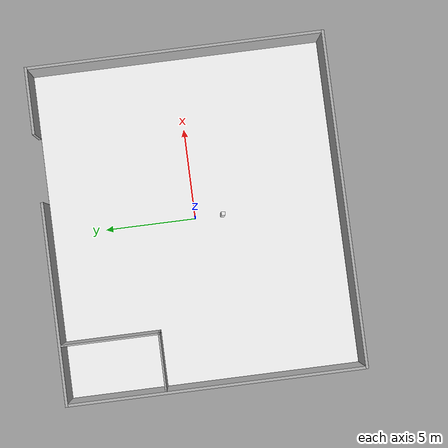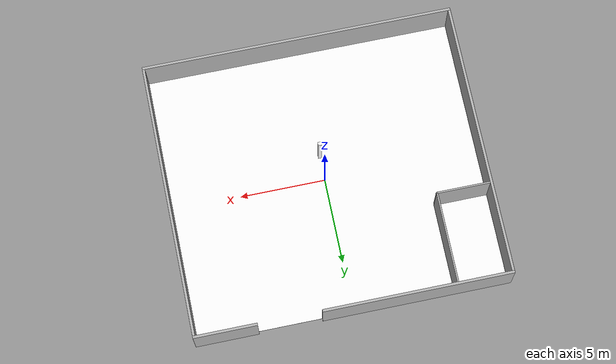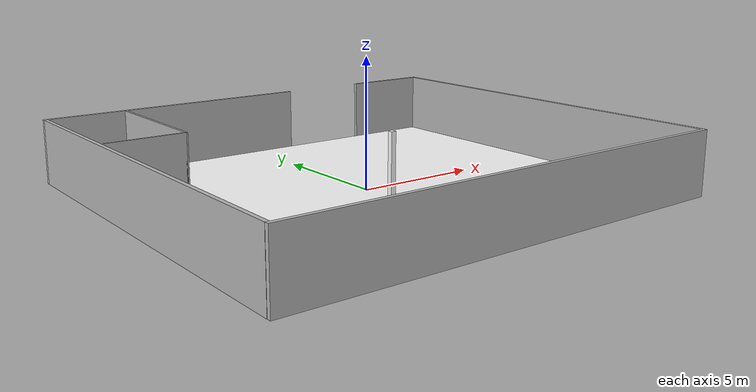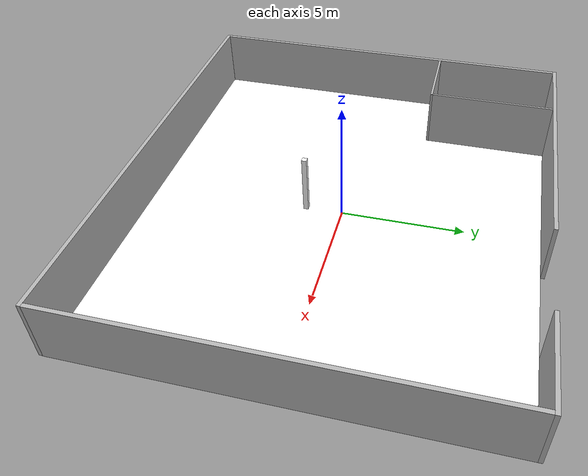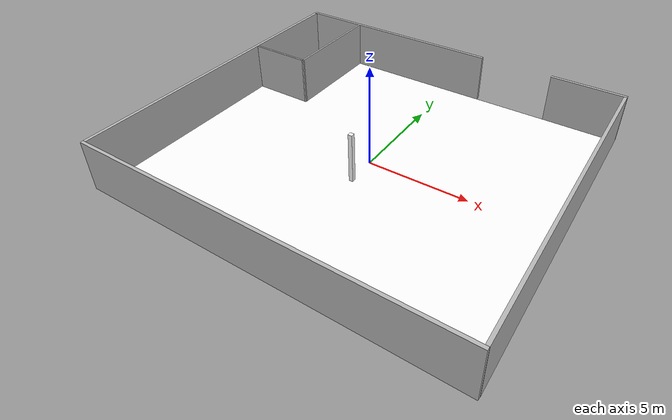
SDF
<?xml version="1.0"?>
<sdf version="1.6">
<model name='highbay_building'>
  <static>true</static>
  <pose frame=''>0 0 0 0 -0 0</pose>

    <link name='Wall_1'>
      <collision name='Wall_1_Collision'>
        <geometry>
          <box>
            <size>3.6576 .15239 2.5</size>
          </box>
        </geometry>
        <pose frame=''>0 0 1.25 0 -0 0</pose>
      </collision>
      <visual name='Wall_1_Visual'>
        <pose frame=''>0 0 1.25 0 -0 0</pose>
        <geometry>
          <box>
            <size>3.6576 .15239 2.5</size>
          </box>
        </geometry>
        <material>
          <script>

            <uri>model://highbay_model/materials/scripts</uri>
            <uri>model://highbay_model/materials/textures</uri>
            <name>RepeatedTexture</name>

          </script>
        </material>
      </visual>
      <pose frame=''>7.323594 8.05 0 0 -0 0</pose>
    </link>

    <link name='Wall_1_5'>
      <collision name='Wall_1_5_Collision'>
        <geometry>
          <box>
            <size>10.9728 .15239 2.5</size>
          </box>
        </geometry>
        <pose frame=''>0 0 1.25 0 -0 0</pose>
      </collision>
      <visual name='Wall_1_5_Visual'>
        <pose frame=''>0 0 1.25 0 -0 0</pose>
        <geometry>
          <box>
            <size>10.9728 .15239 2.5</size>
          </box>
        </geometry>
        <material>
          <script>
            <uri>model://highbay_model/materials/scripts</uri>
            <uri>model://highbay_model/materials/textures</uri>
            <name>RepeatedTexture</name>
          </script>
        </material>
      </visual>
      <pose frame=''>-3.665994 8.05 0 0 -0 0</pose>
    </link>

    <link name='Wall_2'>
      <collision name='Wall_2_Collision'>
        <geometry>
          <box>
            <size>15.954375 .15239 2.5</size>
          </box>
        </geometry>
        <pose frame=''>0 0 1.25 0 -0 0</pose>
      </collision>
      <visual name='Wall_2_Visual'>
        <pose frame=''>0 0 1.25 0 -0 0</pose>
        <geometry>
          <box>
            <size>15.954375 .15239 2.5</size>
          </box>
        </geometry>
        <material>
          <script>
            <uri>model://highbay_model/materials/scripts</uri>
            <uri>model://highbay_model/materials/textures</uri>
            <name>RepeatedTexture</name>
          </script>
        </material>
      </visual>
      <pose frame=''>-9.076199 0 0 0 -0 1.57079632679</pose>
    </link>

    <link name='Wall_3'>
      <collision name='Wall_3_Collision'>
        <geometry>
          <box>
            <size>18.288 .15239 2.5</size>
          </box>
        </geometry>
        <pose frame=''>0 0 1.25 0 -0 0</pose>
      </collision>
      <visual name='Wall_3_Visual'>
        <pose frame=''>0 0 1.25 0 -0 0</pose>
        <geometry>
          <box>
            <size>18.288 .15239 2.5</size>
          </box>
        </geometry>
        <material>
          <script>
            <uri>model://highbay_model/materials/scripts</uri>
            <uri>model://highbay_model/materials/textures</uri>
            <name>RepeatedTexture</name>
          </script>
        </material>
      </visual>
      <pose frame=''>0 -8.05 0 0 -0 0</pose>
    </link>

    <link name='Wall_4'>
      <collision name='Wall_4_Collision'>
        <geometry>
          <box>
            <size>15.954375 .15239 2.5</size>
          </box>
        </geometry>
        <pose frame=''>0 0 1.25 0 -0 0</pose>
      </collision>
      <visual name='Wall_4_Visual'>
        <pose frame=''>0 0 1.25 0 -0 0</pose>
        <geometry>
          <box>
            <size>15.954375 .15239 2.5</size>
          </box>
        </geometry>
        <material>
          <script>
            <uri>model://highbay_model/materials/scripts</uri>
            <uri>model://highbay_model/materials/textures</uri>
            <name>RepeatedTexture</name>
          </script>
        </material>
      </visual>
      <pose frame=''>9.076199 0 0 0 -0 1.57079632679</pose>
    </link>

    <link name='Wall_5'>
      <collision name='Wall_5_Collision'>
        <geometry>
          <box>
            <size>3.07975 .092075 2.5</size>
          </box>
        </geometry>
        <pose frame=''>0 0 1.25 0 -0 0</pose>
      </collision>
      <visual name='Wall_5_Visual'>
        <pose frame=''>0 0 1.25 0 -0 0</pose>
        <geometry>
          <box>
            <size>3.07975 .092075 2.5</size>
          </box>
        </geometry>
        <material>
          <script>
            <uri>model://highbay_model/materials/scripts</uri>
            <uri>model://highbay_model/materials/textures</uri>
            <name>RepeatedTexture</name>
          </script>
        </material>
      </visual>
      <pose frame=''>-7.460129 2.7144175 0 0 -0 0</pose>
    </link>

  <link name='Wall_6'>
    <collision name='Wall_6_Collision'>
      <geometry>
        <box>
          <size>.092075 .092075 2.5</size>
        </box>
      </geometry>
      <pose frame=''>0 0 1.25 0 -0 0</pose>
    </collision>
    <visual name='Wall_6_Visual'>
      <pose frame=''>0 0 1.25 0 -0 0</pose>
      <geometry>
        <box>
          <size>.092075 .092075 2.5</size>
        </box>
      </geometry>
      <material>
        <script>
          <uri>model://highbay_model/materials/scripts</uri>
          <uri>model://highbay_model/materials/textures</uri>
          <name>RepeatedTexture</name>
        </script>
      </material>
    </visual>
    <pose frame=''>-5.911379 2.7144175 0 0 -0 1.5708</pose>
  </link>

  <link name='Wall_7'>
    <collision name='Wall_7_Collision'>
      <geometry>
        <box>
          <size>5.21335 .092075 2.5</size>
        </box>
      </geometry>
      <pose frame=''>0 0 1.25 0 -0 0</pose>
    </collision>
    <visual name='Wall_7_Visual'>
      <pose frame=''>0 0 1.25 0 -0 0</pose>
      <geometry>
        <box>
          <size>5.21335 .092075 2.5</size>
        </box>
      </geometry>
      <material>
        <script>
          <uri>model://highbay_model/materials/scripts</uri>
          <uri>model://highbay_model/materials/textures</uri>
          <name>RepeatedTexture</name>
        </script>
      </material>
    </visual>
    <pose frame=''>-5.911379 5.36713 0 0 -0 1.5708</pose>
  </link>

  <link name='Pillar'>
    <collision name='Pillar_Collision'>
      <geometry>
        <box>
          <size>0.2 0.2 2.5</size>
        </box>
      </geometry>
      <pose frame=''>0 0 1.25 0 -0 0</pose>
    </collision>
    <visual name='Pillar_Visual'>
      <pose frame=''>0 0 1.25 0 -0 0</pose>
      <geometry>
        <box>
          <size>0.2 0.2 2.5</size>
        </box>
      </geometry>
      <material>
        <script>
          <uri>model://highbay_model/materials/scripts</uri>
          <uri>model://highbay_model/materials/textures</uri>
          <name>RepeatedTexture</name>
        </script>
        <ambient>1 1 1 1</ambient>
      </material>
      <meta>
        <layer>0</layer>
      </meta>
    </visual>
    <pose frame=''>.008394 -1.5 0 0 -0 -1.5708</pose>
  </link>

  <link name='Floor'>
    <collision name='Floor_Collision'>
      <geometry>
        <box>
          <size>18.288  15.954375 .005</size>
        </box>
      </geometry>
      <pose frame=''>0 0 1.25 0 -0 0</pose>
    </collision>
    <visual name='Floor_Visual'>
      <pose frame=''>0 0 1.25 0 -0 0</pose>
      <geometry>
        <box>
          <size>18.288  15.954375 .005</size>
        </box>
      </geometry>
      <material>
        <script>
          <uri>model://highbay_model/materials/scripts</uri>
          <uri>model://highbay_model/materials/textures</uri>
          <name>RepeatedFloor</name>
        </script>
        <ambient>1 1 1 1</ambient>
      </material>
      <meta>
        <layer>0</layer>
      </meta>
    </visual>
    <pose frame=''>0 0 -1.25 0 -0 0</pose>
  </link>

</model>
</sdf>
